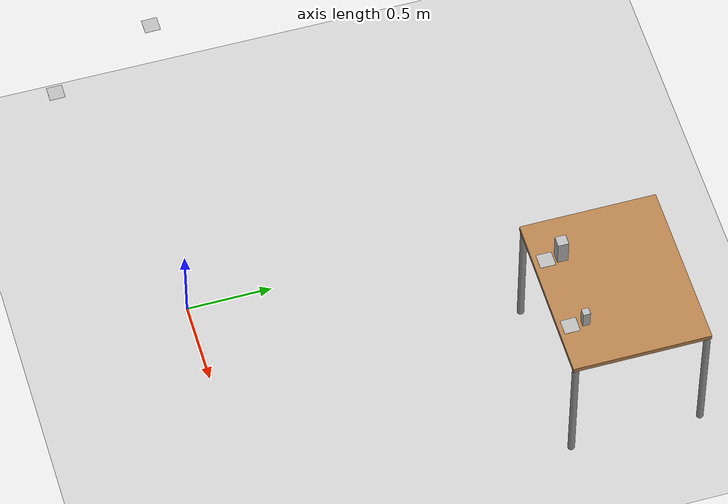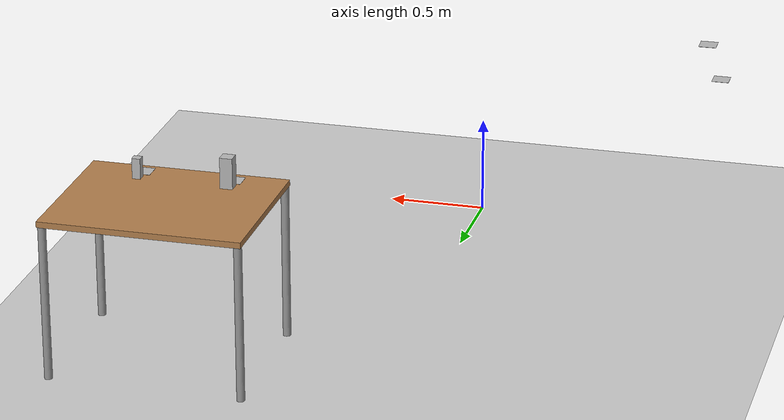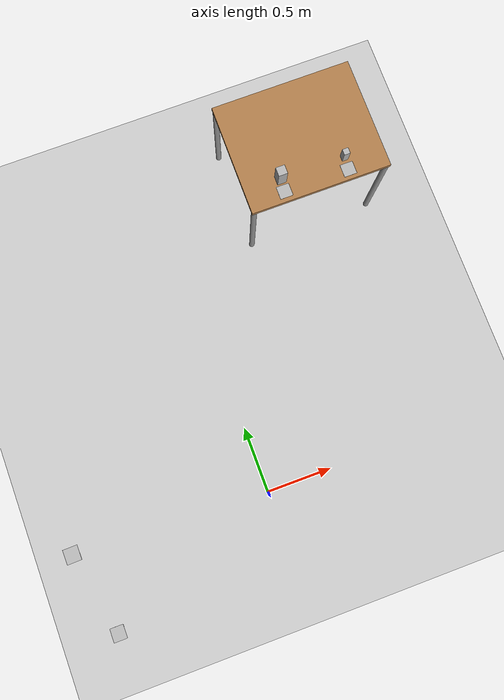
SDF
<sdf version="1.6">
 <world name="default">
  <plugin name="ros_link_attacher_plugin" filename="libgazebo_ros_link_attacher.so"/>
  <light name="sun" type="directional">
   <pose>0 0 10 0 -0 0</pose>
   <diffuse>0.8 0.8 0.8 1</diffuse>
   <specular>0.2 0.2 0.2 1</specular>
   <attenuation>
    <range>1000</range>
    <constant>0.9</constant>
    <linear>0.01</linear>
    <quadratic>0.001</quadratic>
   </attenuation>
   <direction>-0.5 0.1 -0.9</direction>
  </light>
  <model name="ground_plane">
   <static>1</static>
   <link name="link">
    <collision name="collision">
     <geometry><plane><normal>0 0 1</normal><size>100 100</size></plane></geometry>
     <surface>
      <contact><collide_bitmask>65535</collide_bitmask></contact>
      <friction><ode><mu>100</mu><mu2>50</mu2></ode></friction>
     </surface>
    </collision>
    <visual name="visual">
     <cast_shadows>0</cast_shadows>
     <geometry><plane><normal>0 0 1</normal><size>100 100</size></plane></geometry>
     <material>
      <script><uri>file://media/materials/scripts/gazebo.material</uri><name>Gazebo/Grey</name></script>
     </material>
    </visual>
   </link>
  </model>
  <gravity>0 0 -9.8</gravity>
  <magnetic_field>6e-06 2.3e-05 -4.2e-05</magnetic_field>
  <atmosphere type="adiabatic"/>
  <physics name="default_physics" default="0" type="ode">
   <max_step_size>0.001</max_step_size>
   <real_time_factor>1</real_time_factor>
   <real_time_update_rate>1000</real_time_update_rate>
  </physics>
  <scene><ambient>0.4 0.4 0.4 1</ambient><background>0.7 0.7 0.7 1</background><shadows>1</shadows></scene>
  <audio><device>default</device></audio>
  <spherical_coordinates>
   <surface_model>EARTH_WGS84</surface_model>
   <latitude_deg>0</latitude_deg>
   <longitude_deg>0</longitude_deg>
   <elevation>0</elevation>
   <heading_deg>0</heading_deg>
  </spherical_coordinates>
  <model name="table">
   <static>1</static>
   <link name="link">
    <collision name="surface">
     <pose>0 0 0.8 0 -0 0</pose>
     <geometry><box><size>1 0.8 0.03</size></box></geometry>
    </collision>
    <visual name="visual1">
     <pose>0 0 0.8 0 -0 0</pose>
     <geometry><box><size>1 0.8 0.03</size></box></geometry>
     <material>
      <script><uri>file://media/materials/scripts/gazebo.material</uri><name>Gazebo/Wood</name></script>
     </material>
    </visual>
    <collision name="front_left_leg">
     <pose>0.48 0.38 0.4 0 -0 0</pose>
     <geometry><cylinder><radius>0.02</radius><length>0.8</length></cylinder></geometry>
    </collision>
    <visual name="front_left_leg">
     <pose>0.48 0.38 0.4 0 -0 0</pose>
     <geometry><cylinder><radius>0.02</radius><length>0.8</length></cylinder></geometry>
     <material>
      <script><uri>file://media/materials/scripts/gazebo.material</uri><name>Gazebo/Grey</name></script>
     </material>
    </visual>
    <collision name="front_right_leg">
     <pose>0.48 -0.38 0.4 0 -0 0</pose>
     <geometry><cylinder><radius>0.02</radius><length>0.8</length></cylinder></geometry>
    </collision>
    <visual name="front_right_leg">
     <pose>0.48 -0.38 0.4 0 -0 0</pose>
     <geometry><cylinder><radius>0.02</radius><length>0.8</length></cylinder></geometry>
     <material>
      <script><uri>file://media/materials/scripts/gazebo.material</uri><name>Gazebo/Grey</name></script>
     </material>
    </visual>
    <collision name="back_right_leg">
     <pose>-0.48 -0.38 0.4 0 -0 0</pose>
     <geometry><cylinder><radius>0.02</radius><length>0.8</length></cylinder></geometry>
    </collision>
    <visual name="back_right_leg">
     <pose>-0.48 -0.38 0.4 0 -0 0</pose>
     <geometry><cylinder><radius>0.02</radius><length>0.8</length></cylinder></geometry>
     <material>
      <script><uri>file://media/materials/scripts/gazebo.material</uri><name>Gazebo/Grey</name></script>
     </material>
    </visual>
    <collision name="back_left_leg">
     <pose>-0.48 0.38 0.4 0 -0 0</pose>
     <geometry><cylinder><radius>0.02</radius><length>0.8</length></cylinder></geometry>
    </collision>
    <visual name="back_left_leg">
     <pose>-0.48 0.38 0.4 0 -0 0</pose>
     <geometry><cylinder><radius>0.02</radius><length>0.8</length></cylinder></geometry>
     <material>
      <script><uri>file://media/materials/scripts/gazebo.material</uri><name>Gazebo/Grey</name></script>
     </material>
    </visual>
    <velocity_decay><linear>0</linear><angular>0</angular></velocity_decay>
   </link>
   <pose>1.03045 2.20458 0 0 -0 0</pose>
  </model>
  <model name="AH_hagelslag_puur">
   <link name="link_0">
    <inertial>
     <mass>0.5</mass>
     <inertia><ixx>0.0014</ixx><ixy>0</ixy><ixz>0</ixz><iyy>0.0014</iyy><iyz>0</iyz><izz>0.0028</izz></inertia>
    </inertial>
    <visual name="visual">
     <geometry><mesh><uri>model://0-blender/AH_hagelslag_puur.dae</uri><scale>1 1 1</scale></mesh></geometry>
    </visual>
    <collision name="collision">
     <geometry><mesh><uri>model://0-blender/AH_hagelslag_puur.dae</uri><scale>1 1 1</scale></mesh></geometry>
     <surface>
      <friction>
       <ode><mu>1</mu><mu2>1</mu2><fdir1>0 0 0</fdir1><slip1>0</slip1><slip2>0</slip2></ode>
       <torsional>
        <coefficient>1</coefficient>
        <patch_radius>0</patch_radius>
        <surface_radius>0</surface_radius>
        <use_patch_radius>1</use_patch_radius>
        <ode><slip>0</slip></ode>
       </torsional>
      </friction>
      <bounce><restitution_coefficient>0</restitution_coefficient><threshold>1e+06</threshold></bounce>
      <contact>
       <collide_without_contact>0</collide_without_contact>
       <collide_without_contact_bitmask>1</collide_without_contact_bitmask>
       <collide_bitmask>1</collide_bitmask>
       <ode>
        <soft_cfm>0</soft_cfm>
        <soft_erp>0.2</soft_erp>
        <kp>1e+13</kp>
        <kd>1</kd>
        <max_vel>0.01</max_vel>
        <min_depth>0</min_depth>
       </ode>
       <bullet>
        <split_impulse>1</split_impulse>
        <split_impulse_penetration_threshold>-0.01</split_impulse_penetration_threshold>
        <soft_cfm>0</soft_cfm>
        <soft_erp>0.2</soft_erp>
        <kp>1e+13</kp>
        <kd>1</kd>
       </bullet>
      </contact>
     </surface>
    </collision>
   </link>
   <static>0</static>
   <pose>0.790984 1.96566 0.893499 -1.2e-05 -1.8e-05 0.000304</pose>
  </model>
  <model name="aruco_marker_9cm_63">
   <static>0</static>
   <link name="marker">
    <inertial>
     <mass>0.1</mass>
     <inertia><ixx>0</ixx><ixy>0</ixy><ixz>0</ixz><iyy>0</iyy><iyz>0</iyz><izz>0</izz></inertia>
    </inertial>
    <visual name="visual">
     <pose>0 0 0 0 -0 1.57</pose>
     <geometry><box><size>0.09 0.09 0.001</size></box></geometry>
     <material>
      <script>
       <uri>model://aruco_marker_9cm_63/material/scripts</uri>
       <uri>model://aruco_marker_9cm_63/material/textures</uri>
       <name>Aruco/aruco_marker_9cm_63</name>
      </script>
     </material>
    </visual>
    <collision name="collision"><geometry><box><size>0.09 0.09 0.001</size></box></geometry></collision>
    <self_collide>1</self_collide>
   </link>
   <pose>-1.19682 -0.436191 0.69034 -3e-06 3e-06 -4.8e-05</pose>
  </model>
  <model name="aruco_marker_9cm_238">
   <static>0</static>
   <link name="marker">
    <inertial>
     <mass>0.1</mass>
     <inertia><ixx>0</ixx><ixy>0</ixy><ixz>0</ixz><iyy>0</iyy><iyz>0</iyz><izz>0</izz></inertia>
    </inertial>
    <visual name="visual">
     <pose>0 0 0 0 -0 1.57</pose>
     <geometry><box><size>0.09 0.09 0.001</size></box></geometry>
     <material>
      <script>
       <uri>model://aruco_marker_9cm_238/material/scripts</uri>
       <uri>model://aruco_marker_9cm_238/material/textures</uri>
       <name>Aruco/aruco_marker_9cm_238</name>
      </script>
     </material>
    </visual>
    <collision name="collision"><geometry><box><size>0.09 0.09 0.001</size></box></geometry></collision>
    <self_collide>1</self_collide>
   </link>
   <pose>-1.21323 0.145997 1.09035 1e-06 -0 1.58541</pose>
  </model>
  <model name="aruco_marker_9cm_238_0">
   <static>0</static>
   <link name="marker">
    <inertial>
     <mass>0.1</mass>
     <inertia><ixx>0</ixx><ixy>0</ixy><ixz>0</ixz><iyy>0</iyy><iyz>0</iyz><izz>0</izz></inertia>
    </inertial>
    <visual name="visual">
     <pose>0 0 0 0 -0 1.57</pose>
     <geometry><box><size>0.09 0.09 0.001</size></box></geometry>
     <material>
      <script>
       <uri>model://aruco_marker_9cm_238/material/scripts</uri>
       <uri>model://aruco_marker_9cm_238/material/textures</uri>
       <name>Aruco/aruco_marker_9cm_238</name>
      </script>
     </material>
    </visual>
    <collision name="collision"><geometry><box><size>0.09 0.09 0.001</size></box></geometry></collision>
    <self_collide>1</self_collide>
   </link>
   <pose>1.24801 1.87498 0.815501 1.4e-05 1.9e-05 -0.000149</pose>
  </model>
  <model name="aruco_marker_9cm_26">
   <static>0</static>
   <link name="marker">
    <inertial>
     <mass>0.1</mass>
     <inertia><ixx>0</ixx><ixy>0</ixy><ixz>0</ixz><iyy>0</iyy><iyz>0</iyz><izz>0</izz></inertia>
    </inertial>
    <visual name="visual">
     <pose>0 0 0 0 -0 1.57</pose>
     <geometry><box><size>0.09 0.09 0.001</size></box></geometry>
     <material>
      <script>
       <uri>model://aruco_marker_9cm_26/material/scripts</uri>
       <uri>model://aruco_marker_9cm_26/material/textures</uri>
       <name>Aruco/aruco_marker_9cm_26</name>
      </script>
     </material>
    </visual>
    <collision name="collision"><geometry><box><size>0.09 0.09 0.001</size></box></geometry></collision>
    <self_collide>1</self_collide>
   </link>
   <pose>0.788694 1.87799 0.815501 -2e-06 -1.6e-05 -0</pose>
  </model>
  <model name="AH_hagelslag_puur_small">
   <link name="link_0">
    <inertial>
     <mass>0.5</mass>
     <inertia><ixx>0.0014</ixx><ixy>0</ixy><ixz>0</ixz><iyy>0.0014</iyy><iyz>0</iyz><izz>0.0028</izz></inertia>
    </inertial>
    <visual name="visual">
     <geometry><mesh><uri>model://0-blender/AH_hagelslag_puur_small.dae</uri><scale>1 1 1</scale></mesh></geometry>
    </visual>
    <collision name="collision">
     <geometry><mesh><uri>model://0-blender/AH_hagelslag_puur_small.dae</uri><scale>1 1 1</scale></mesh></geometry>
     <surface>
      <friction>
       <ode><mu>1</mu><mu2>1</mu2><fdir1>0 0 0</fdir1><slip1>0</slip1><slip2>0</slip2></ode>
       <torsional>
        <coefficient>1</coefficient>
        <patch_radius>0</patch_radius>
        <surface_radius>0</surface_radius>
        <use_patch_radius>1</use_patch_radius>
        <ode><slip>0</slip></ode>
       </torsional>
      </friction>
      <bounce><restitution_coefficient>0</restitution_coefficient><threshold>1e+06</threshold></bounce>
      <contact>
       <collide_without_contact>0</collide_without_contact>
       <collide_without_contact_bitmask>1</collide_without_contact_bitmask>
       <collide_bitmask>1</collide_bitmask>
       <ode>
        <soft_cfm>0</soft_cfm>
        <soft_erp>0.2</soft_erp>
        <kp>1e+13</kp>
        <kd>1</kd>
        <max_vel>0.01</max_vel>
        <min_depth>0</min_depth>
       </ode>
       <bullet>
        <split_impulse>1</split_impulse>
        <split_impulse_penetration_threshold>-0.01</split_impulse_penetration_threshold>
        <soft_cfm>0</soft_cfm>
        <soft_erp>0.2</soft_erp>
        <kp>1e+13</kp>
        <kd>1</kd>
       </bullet>
      </contact>
     </surface>
    </collision>
   </link>
   <static>0</static>
   <pose>1.24975 1.96141 0.867324 -2e-06 1.5e-05 5e-05</pose>
  </model>
 </world>
</sdf>
